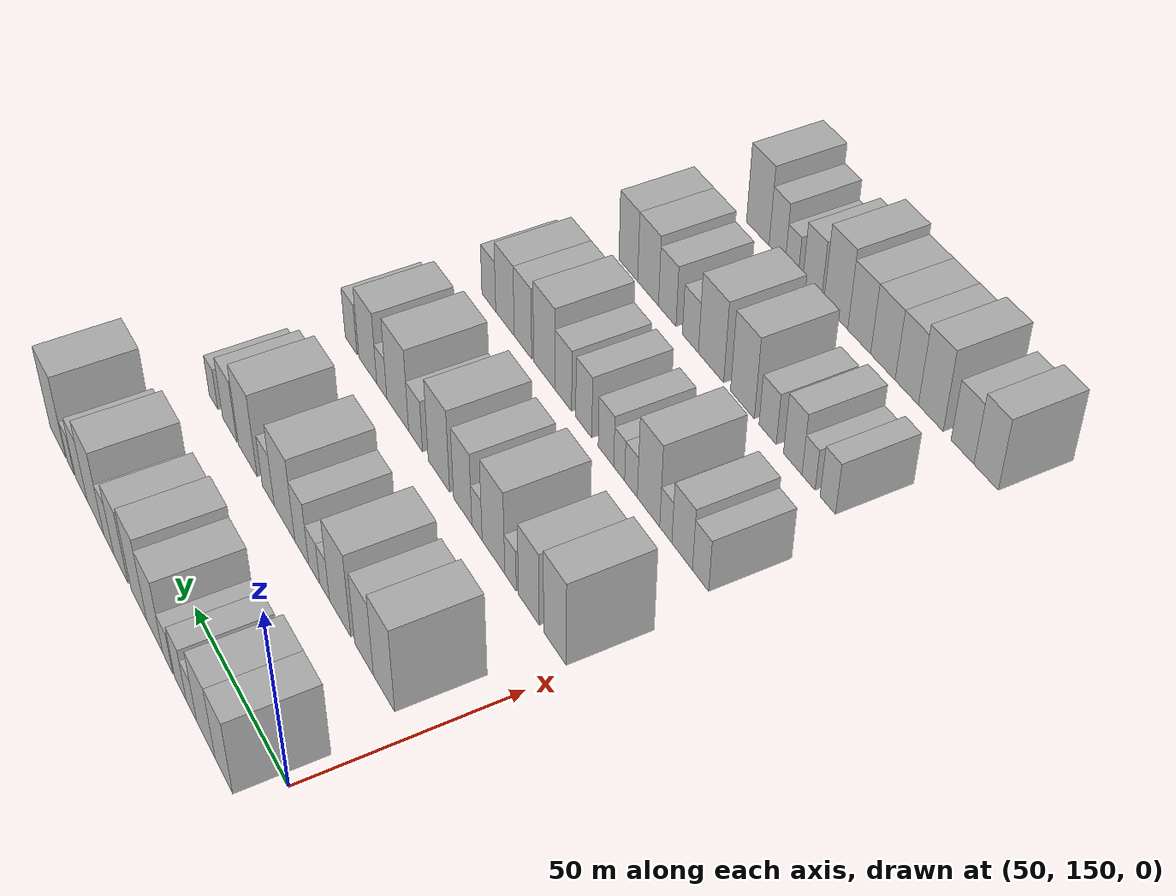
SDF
<sdf version="1.6">
 <world name="default">
  <model name="building_82">
   <static>1</static>
   <pose>50.0000 157.8252 0 0.000000 0.000000 0.000000</pose>
   <link name="link">
    <pose>0 0 10.50 0 0 0</pose>
    <collision name="collision"><geometry><box><size>20.0000 9.1745 21.0000</size></box></geometry></collision>
    <visual name="visual">
     <cast_shadows>0</cast_shadows>
     <geometry><box><size>20.0000 9.1745 21.0000</size></box></geometry>
     <material>
      <script>
       <uri>model://HANNAS_wall/materials/scripts</uri>
       <uri>model://HANNAS_wall/materials/textures</uri>
       <name>vrc/HANNAS_wall</name>
      </script>
     </material>
    </visual>
   </link>
  </model>
  <model name="building_83">
   <static>1</static>
   <pose>50.0000 167.4381 0 0.000000 0.000000 0.000000</pose>
   <link name="link">
    <pose>0 0 10.50 0 0 0</pose>
    <collision name="collision"><geometry><box><size>20.0000 10.0513 21.0000</size></box></geometry></collision>
    <visual name="visual">
     <cast_shadows>0</cast_shadows>
     <geometry><box><size>20.0000 10.0513 21.0000</size></box></geometry>
     <material>
      <script>
       <uri>model://HANNAS_wall/materials/scripts</uri>
       <uri>model://HANNAS_wall/materials/textures</uri>
       <name>vrc/HANNAS_wall</name>
      </script>
     </material>
    </visual>
   </link>
  </model>
  <model name="building_84">
   <static>1</static>
   <pose>50.0000 175.4180 0 0.000000 0.000000 0.000000</pose>
   <link name="link">
    <pose>0 0 6.00 0 0 0</pose>
    <collision name="collision"><geometry><box><size>20.0000 5.9084 12.0000</size></box></geometry></collision>
    <visual name="visual">
     <cast_shadows>0</cast_shadows>
     <geometry><box><size>20.0000 5.9084 12.0000</size></box></geometry>
     <material>
      <script>
       <uri>model://HANNAS_wall/materials/scripts</uri>
       <uri>model://HANNAS_wall/materials/textures</uri>
       <name>vrc/HANNAS_wall</name>
      </script>
     </material>
    </visual>
   </link>
  </model>
  <model name="building_85">
   <static>1</static>
   <pose>50.0000 181.6657 0 0.000000 0.000000 0.000000</pose>
   <link name="link">
    <pose>0 0 7.50 0 0 0</pose>
    <collision name="collision"><geometry><box><size>20.0000 6.5872 15.0000</size></box></geometry></collision>
    <visual name="visual">
     <cast_shadows>0</cast_shadows>
     <geometry><box><size>20.0000 6.5872 15.0000</size></box></geometry>
     <material>
      <script>
       <uri>model://HANNAS_wall/materials/scripts</uri>
       <uri>model://HANNAS_wall/materials/textures</uri>
       <name>vrc/HANNAS_wall</name>
      </script>
     </material>
    </visual>
   </link>
  </model>
  <model name="building_86">
   <static>1</static>
   <pose>50.0000 188.8149 0 0.000000 0.000000 0.000000</pose>
   <link name="link">
    <pose>0 0 6.00 0 0 0</pose>
    <collision name="collision"><geometry><box><size>20.0000 5.7112 12.0000</size></box></geometry></collision>
    <visual name="visual">
     <cast_shadows>0</cast_shadows>
     <geometry><box><size>20.0000 5.7112 12.0000</size></box></geometry>
     <material>
      <script>
       <uri>model://HANNAS_wall/materials/scripts</uri>
       <uri>model://HANNAS_wall/materials/textures</uri>
       <name>vrc/HANNAS_wall</name>
      </script>
     </material>
    </visual>
   </link>
  </model>
  <model name="building_87">
   <static>1</static>
   <pose>50.0000 196.4454 0 0.000000 0.000000 0.000000</pose>
   <link name="link">
    <pose>0 0 10.50 0 0 0</pose>
    <collision name="collision"><geometry><box><size>20.0000 9.5497 21.0000</size></box></geometry></collision>
    <visual name="visual">
     <cast_shadows>0</cast_shadows>
     <geometry><box><size>20.0000 9.5497 21.0000</size></box></geometry>
     <material>
      <script>
       <uri>model://HANNAS_wall/materials/scripts</uri>
       <uri>model://HANNAS_wall/materials/textures</uri>
       <name>vrc/HANNAS_wall</name>
      </script>
     </material>
    </visual>
   </link>
  </model>
  <model name="building_88">
   <static>1</static>
   <pose>50.0000 206.0378 0 0.000000 0.000000 0.000000</pose>
   <link name="link">
    <pose>0 0 12.00 0 0 0</pose>
    <collision name="collision"><geometry><box><size>20.0000 9.6351 24.0000</size></box></geometry></collision>
    <visual name="visual">
     <cast_shadows>0</cast_shadows>
     <geometry><box><size>20.0000 9.6351 24.0000</size></box></geometry>
     <material>
      <script>
       <uri>model://HANNAS_wall/materials/scripts</uri>
       <uri>model://HANNAS_wall/materials/textures</uri>
       <name>vrc/HANNAS_wall</name>
      </script>
     </material>
    </visual>
   </link>
  </model>
  <model name="building_89">
   <static>1</static>
   <pose>50.0000 217.3283 0 0.000000 0.000000 0.000000</pose>
   <link name="link">
    <pose>0 0 10.50 0 0 0</pose>
    <collision name="collision"><geometry><box><size>20.0000 8.9458 21.0000</size></box></geometry></collision>
    <visual name="visual">
     <cast_shadows>0</cast_shadows>
     <geometry><box><size>20.0000 8.9458 21.0000</size></box></geometry>
     <material>
      <script>
       <uri>model://HANNAS_wall/materials/scripts</uri>
       <uri>model://HANNAS_wall/materials/textures</uri>
       <name>vrc/HANNAS_wall</name>
      </script>
     </material>
    </visual>
   </link>
  </model>
  <model name="building_90">
   <static>1</static>
   <pose>50.0000 225.0494 0 0.000000 0.000000 0.000000</pose>
   <link name="link">
    <pose>0 0 7.50 0 0 0</pose>
    <collision name="collision"><geometry><box><size>20.0000 6.4965 15.0000</size></box></geometry></collision>
    <visual name="visual">
     <cast_shadows>0</cast_shadows>
     <geometry><box><size>20.0000 6.4965 15.0000</size></box></geometry>
     <material>
      <script>
       <uri>model://HANNAS_wall/materials/scripts</uri>
       <uri>model://HANNAS_wall/materials/textures</uri>
       <name>vrc/HANNAS_wall</name>
      </script>
     </material>
    </visual>
   </link>
  </model>
  <model name="building_91">
   <static>1</static>
   <pose>50.0000 233.7222 0 0.000000 0.000000 0.000000</pose>
   <link name="link">
    <pose>0 0 12.00 0 0 0</pose>
    <collision name="collision"><geometry><box><size>20.0000 10.8490 24.0000</size></box></geometry></collision>
    <visual name="visual">
     <cast_shadows>0</cast_shadows>
     <geometry><box><size>20.0000 10.8490 24.0000</size></box></geometry>
     <material>
      <script>
       <uri>model://HANNAS_wall/materials/scripts</uri>
       <uri>model://HANNAS_wall/materials/textures</uri>
       <name>vrc/HANNAS_wall</name>
      </script>
     </material>
    </visual>
   </link>
  </model>
  <model name="building_92">
   <static>1</static>
   <pose>50.0000 243.1330 0 0.000000 0.000000 0.000000</pose>
   <link name="link">
    <pose>0 0 9.00 0 0 0</pose>
    <collision name="collision"><geometry><box><size>20.0000 7.9726 18.0000</size></box></geometry></collision>
    <visual name="visual">
     <cast_shadows>0</cast_shadows>
     <geometry><box><size>20.0000 7.9726 18.0000</size></box></geometry>
     <material>
      <script>
       <uri>model://HANNAS_wall/materials/scripts</uri>
       <uri>model://HANNAS_wall/materials/textures</uri>
       <name>vrc/HANNAS_wall</name>
      </script>
     </material>
    </visual>
   </link>
  </model>
  <model name="building_93">
   <static>1</static>
   <pose>50.0000 250.5277 0 0.000000 0.000000 0.000000</pose>
   <link name="link">
    <pose>0 0 6.00 0 0 0</pose>
    <collision name="collision"><geometry><box><size>20.0000 4.8167 12.0000</size></box></geometry></collision>
    <visual name="visual">
     <cast_shadows>0</cast_shadows>
     <geometry><box><size>20.0000 4.8167 12.0000</size></box></geometry>
     <material>
      <script>
       <uri>model://HANNAS_wall/materials/scripts</uri>
       <uri>model://HANNAS_wall/materials/textures</uri>
       <name>vrc/HANNAS_wall</name>
      </script>
     </material>
    </visual>
   </link>
  </model>
  <model name="building_94">
   <static>1</static>
   <pose>50.0000 259.5753 0 0.000000 0.000000 0.000000</pose>
   <link name="link">
    <pose>0 0 12.00 0 0 0</pose>
    <collision name="collision"><geometry><box><size>20.0000 11.2786 24.0000</size></box></geometry></collision>
    <visual name="visual">
     <cast_shadows>0</cast_shadows>
     <geometry><box><size>20.0000 11.2786 24.0000</size></box></geometry>
     <material>
      <script>
       <uri>model://HANNAS_wall/materials/scripts</uri>
       <uri>model://HANNAS_wall/materials/textures</uri>
       <name>vrc/HANNAS_wall</name>
      </script>
     </material>
    </visual>
   </link>
  </model>
  <model name="building_213">
   <static>1</static>
   <pose>85.0000 162.1244 0 0.000000 0.000000 0.000000</pose>
   <link name="link">
    <pose>0 0 12.00 0 0 0</pose>
    <collision name="collision"><geometry><box><size>20.0000 10.1850 24.0000</size></box></geometry></collision>
    <visual name="visual">
     <cast_shadows>0</cast_shadows>
     <geometry><box><size>20.0000 10.1850 24.0000</size></box></geometry>
     <material>
      <script>
       <uri>model://HANNAS_wall/materials/scripts</uri>
       <uri>model://HANNAS_wall/materials/textures</uri>
       <name>vrc/HANNAS_wall</name>
      </script>
     </material>
    </visual>
   </link>
  </model>
  <model name="building_214">
   <static>1</static>
   <pose>85.0000 171.8482 0 0.000000 0.000000 0.000000</pose>
   <link name="link">
    <pose>0 0 10.50 0 0 0</pose>
    <collision name="collision"><geometry><box><size>20.0000 9.2625 21.0000</size></box></geometry></collision>
    <visual name="visual">
     <cast_shadows>0</cast_shadows>
     <geometry><box><size>20.0000 9.2625 21.0000</size></box></geometry>
     <material>
      <script>
       <uri>model://HANNAS_wall/materials/scripts</uri>
       <uri>model://HANNAS_wall/materials/textures</uri>
       <name>vrc/HANNAS_wall</name>
      </script>
     </material>
    </visual>
   </link>
  </model>
  <model name="building_215">
   <static>1</static>
   <pose>85.0000 183.9553 0 0.000000 0.000000 0.000000</pose>
   <link name="link">
    <pose>0 0 12.00 0 0 0</pose>
    <collision name="collision"><geometry><box><size>20.0000 10.9518 24.0000</size></box></geometry></collision>
    <visual name="visual">
     <cast_shadows>0</cast_shadows>
     <geometry><box><size>20.0000 10.9518 24.0000</size></box></geometry>
     <material>
      <script>
       <uri>model://HANNAS_wall/materials/scripts</uri>
       <uri>model://HANNAS_wall/materials/textures</uri>
       <name>vrc/HANNAS_wall</name>
      </script>
     </material>
    </visual>
   </link>
  </model>
  <model name="building_216">
   <static>1</static>
   <pose>85.0000 191.9980 0 0.000000 0.000000 0.000000</pose>
   <link name="link">
    <pose>0 0 6.00 0 0 0</pose>
    <collision name="collision"><geometry><box><size>20.0000 5.1335 12.0000</size></box></geometry></collision>
    <visual name="visual">
     <cast_shadows>0</cast_shadows>
     <geometry><box><size>20.0000 5.1335 12.0000</size></box></geometry>
     <material>
      <script>
       <uri>model://HANNAS_wall/materials/scripts</uri>
       <uri>model://HANNAS_wall/materials/textures</uri>
       <name>vrc/HANNAS_wall</name>
      </script>
     </material>
    </visual>
   </link>
  </model>
  <model name="building_217">
   <static>1</static>
   <pose>85.0000 197.4975 0 0.000000 0.000000 0.000000</pose>
   <link name="link">
    <pose>0 0 6.00 0 0 0</pose>
    <collision name="collision"><geometry><box><size>20.0000 5.8654 12.0000</size></box></geometry></collision>
    <visual name="visual">
     <cast_shadows>0</cast_shadows>
     <geometry><box><size>20.0000 5.8654 12.0000</size></box></geometry>
     <material>
      <script>
       <uri>model://HANNAS_wall/materials/scripts</uri>
       <uri>model://HANNAS_wall/materials/textures</uri>
       <name>vrc/HANNAS_wall</name>
      </script>
     </material>
    </visual>
   </link>
  </model>
  <model name="building_218">
   <static>1</static>
   <pose>85.0000 204.2107 0 0.000000 0.000000 0.000000</pose>
   <link name="link">
    <pose>0 0 9.00 0 0 0</pose>
    <collision name="collision"><geometry><box><size>20.0000 7.5610 18.0000</size></box></geometry></collision>
    <visual name="visual">
     <cast_shadows>0</cast_shadows>
     <geometry><box><size>20.0000 7.5610 18.0000</size></box></geometry>
     <material>
      <script>
       <uri>model://HANNAS_wall/materials/scripts</uri>
       <uri>model://HANNAS_wall/materials/textures</uri>
       <name>vrc/HANNAS_wall</name>
      </script>
     </material>
    </visual>
   </link>
  </model>
  <model name="building_219">
   <static>1</static>
   <pose>85.0000 213.7804 0 0.000000 0.000000 0.000000</pose>
   <link name="link">
    <pose>0 0 12.00 0 0 0</pose>
    <collision name="collision"><geometry><box><size>20.0000 11.5784 24.0000</size></box></geometry></collision>
    <visual name="visual">
     <cast_shadows>0</cast_shadows>
     <geometry><box><size>20.0000 11.5784 24.0000</size></box></geometry>
     <material>
      <script>
       <uri>model://HANNAS_wall/materials/scripts</uri>
       <uri>model://HANNAS_wall/materials/textures</uri>
       <name>vrc/HANNAS_wall</name>
      </script>
     </material>
    </visual>
   </link>
  </model>
  <model name="building_220">
   <static>1</static>
   <pose>85.0000 223.0181 0 0.000000 0.000000 0.000000</pose>
   <link name="link">
    <pose>0 0 7.50 0 0 0</pose>
    <collision name="collision"><geometry><box><size>20.0000 6.8969 15.0000</size></box></geometry></collision>
    <visual name="visual">
     <cast_shadows>0</cast_shadows>
     <geometry><box><size>20.0000 6.8969 15.0000</size></box></geometry>
     <material>
      <script>
       <uri>model://HANNAS_wall/materials/scripts</uri>
       <uri>model://HANNAS_wall/materials/textures</uri>
       <name>vrc/HANNAS_wall</name>
      </script>
     </material>
    </visual>
   </link>
  </model>
  <model name="building_221">
   <static>1</static>
   <pose>85.0000 234.9901 0 0.000000 0.000000 0.000000</pose>
   <link name="link">
    <pose>0 0 12.00 0 0 0</pose>
    <collision name="collision"><geometry><box><size>20.0000 11.0471 24.0000</size></box></geometry></collision>
    <visual name="visual">
     <cast_shadows>0</cast_shadows>
     <geometry><box><size>20.0000 11.0471 24.0000</size></box></geometry>
     <material>
      <script>
       <uri>model://HANNAS_wall/materials/scripts</uri>
       <uri>model://HANNAS_wall/materials/textures</uri>
       <name>vrc/HANNAS_wall</name>
      </script>
     </material>
    </visual>
   </link>
  </model>
  <model name="building_222">
   <static>1</static>
   <pose>85.0000 245.9176 0 0.000000 0.000000 0.000000</pose>
   <link name="link">
    <pose>0 0 9.00 0 0 0</pose>
    <collision name="collision"><geometry><box><size>20.0000 8.8079 18.0000</size></box></geometry></collision>
    <visual name="visual">
     <cast_shadows>0</cast_shadows>
     <geometry><box><size>20.0000 8.8079 18.0000</size></box></geometry>
     <material>
      <script>
       <uri>model://HANNAS_wall/materials/scripts</uri>
       <uri>model://HANNAS_wall/materials/textures</uri>
       <name>vrc/HANNAS_wall</name>
      </script>
     </material>
    </visual>
   </link>
  </model>
  <model name="building_223">
   <static>1</static>
   <pose>85.0000 256.0054 0 0.000000 0.000000 0.000000</pose>
   <link name="link">
    <pose>0 0 6.00 0 0 0</pose>
    <collision name="collision"><geometry><box><size>20.0000 5.3677 12.0000</size></box></geometry></collision>
    <visual name="visual">
     <cast_shadows>0</cast_shadows>
     <geometry><box><size>20.0000 5.3677 12.0000</size></box></geometry>
     <material>
      <script>
       <uri>model://HANNAS_wall/materials/scripts</uri>
       <uri>model://HANNAS_wall/materials/textures</uri>
       <name>vrc/HANNAS_wall</name>
      </script>
     </material>
    </visual>
   </link>
  </model>
  <model name="building_341">
   <static>1</static>
   <pose>120.0000 156.8927 0 0.000000 0.000000 0.000000</pose>
   <link name="link">
    <pose>0 0 12.00 0 0 0</pose>
    <collision name="collision"><geometry><box><size>20.0000 9.7804 24.0000</size></box></geometry></collision>
    <visual name="visual">
     <cast_shadows>0</cast_shadows>
     <geometry><box><size>20.0000 9.7804 24.0000</size></box></geometry>
     <material>
      <script>
       <uri>model://HANNAS_wall/materials/scripts</uri>
       <uri>model://HANNAS_wall/materials/textures</uri>
       <name>vrc/HANNAS_wall</name>
      </script>
     </material>
    </visual>
   </link>
  </model>
  <model name="building_342">
   <static>1</static>
   <pose>120.0000 168.4335 0 0.000000 0.000000 0.000000</pose>
   <link name="link">
    <pose>0 0 10.50 0 0 0</pose>
    <collision name="collision"><geometry><box><size>20.0000 9.3011 21.0000</size></box></geometry></collision>
    <visual name="visual">
     <cast_shadows>0</cast_shadows>
     <geometry><box><size>20.0000 9.3011 21.0000</size></box></geometry>
     <material>
      <script>
       <uri>model://HANNAS_wall/materials/scripts</uri>
       <uri>model://HANNAS_wall/materials/textures</uri>
       <name>vrc/HANNAS_wall</name>
      </script>
     </material>
    </visual>
   </link>
  </model>
  <model name="building_343">
   <static>1</static>
   <pose>120.0000 176.7363 0 0.000000 0.000000 0.000000</pose>
   <link name="link">
    <pose>0 0 6.00 0 0 0</pose>
    <collision name="collision"><geometry><box><size>20.0000 5.3045 12.0000</size></box></geometry></collision>
    <visual name="visual">
     <cast_shadows>0</cast_shadows>
     <geometry><box><size>20.0000 5.3045 12.0000</size></box></geometry>
     <material>
      <script>
       <uri>model://HANNAS_wall/materials/scripts</uri>
       <uri>model://HANNAS_wall/materials/textures</uri>
       <name>vrc/HANNAS_wall</name>
      </script>
     </material>
    </visual>
   </link>
  </model>
  <model name="building_344">
   <static>1</static>
   <pose>120.0000 184.7528 0 0.000000 0.000000 0.000000</pose>
   <link name="link">
    <pose>0 0 12.00 0 0 0</pose>
    <collision name="collision"><geometry><box><size>20.0000 10.7286 24.0000</size></box></geometry></collision>
    <visual name="visual">
     <cast_shadows>0</cast_shadows>
     <geometry><box><size>20.0000 10.7286 24.0000</size></box></geometry>
     <material>
      <script>
       <uri>model://HANNAS_wall/materials/scripts</uri>
       <uri>model://HANNAS_wall/materials/textures</uri>
       <name>vrc/HANNAS_wall</name>
      </script>
     </material>
    </visual>
   </link>
  </model>
  <model name="building_345">
   <static>1</static>
   <pose>120.0000 192.6079 0 0.000000 0.000000 0.000000</pose>
   <link name="link">
    <pose>0 0 6.00 0 0 0</pose>
    <collision name="collision"><geometry><box><size>20.0000 4.9816 12.0000</size></box></geometry></collision>
    <visual name="visual">
     <cast_shadows>0</cast_shadows>
     <geometry><box><size>20.0000 4.9816 12.0000</size></box></geometry>
     <material>
      <script>
       <uri>model://HANNAS_wall/materials/scripts</uri>
       <uri>model://HANNAS_wall/materials/textures</uri>
       <name>vrc/HANNAS_wall</name>
      </script>
     </material>
    </visual>
   </link>
  </model>
  <model name="building_346">
   <static>1</static>
   <pose>120.0000 199.5885 0 0.000000 0.000000 0.000000</pose>
   <link name="link">
    <pose>0 0 10.50 0 0 0</pose>
    <collision name="collision"><geometry><box><size>20.0000 8.9796 21.0000</size></box></geometry></collision>
    <visual name="visual">
     <cast_shadows>0</cast_shadows>
     <geometry><box><size>20.0000 8.9796 21.0000</size></box></geometry>
     <material>
      <script>
       <uri>model://HANNAS_wall/materials/scripts</uri>
       <uri>model://HANNAS_wall/materials/textures</uri>
       <name>vrc/HANNAS_wall</name>
      </script>
     </material>
    </visual>
   </link>
  </model>
  <model name="building_347">
   <static>1</static>
   <pose>120.0000 211.5350 0 0.000000 0.000000 0.000000</pose>
   <link name="link">
    <pose>0 0 12.00 0 0 0</pose>
    <collision name="collision"><geometry><box><size>20.0000 10.9134 24.0000</size></box></geometry></collision>
    <visual name="visual">
     <cast_shadows>0</cast_shadows>
     <geometry><box><size>20.0000 10.9134 24.0000</size></box></geometry>
     <material>
      <script>
       <uri>model://HANNAS_wall/materials/scripts</uri>
       <uri>model://HANNAS_wall/materials/textures</uri>
       <name>vrc/HANNAS_wall</name>
      </script>
     </material>
    </visual>
   </link>
  </model>
  <model name="building_348">
   <static>1</static>
   <pose>120.0000 223.6300 0 0.000000 0.000000 0.000000</pose>
   <link name="link">
    <pose>0 0 7.50 0 0 0</pose>
    <collision name="collision"><geometry><box><size>20.0000 7.2766 15.0000</size></box></geometry></collision>
    <visual name="visual">
     <cast_shadows>0</cast_shadows>
     <geometry><box><size>20.0000 7.2766 15.0000</size></box></geometry>
     <material>
      <script>
       <uri>model://HANNAS_wall/materials/scripts</uri>
       <uri>model://HANNAS_wall/materials/textures</uri>
       <name>vrc/HANNAS_wall</name>
      </script>
     </material>
    </visual>
   </link>
  </model>
  <model name="building_349">
   <static>1</static>
   <pose>120.0000 233.1793 0 0.000000 0.000000 0.000000</pose>
   <link name="link">
    <pose>0 0 12.00 0 0 0</pose>
    <collision name="collision"><geometry><box><size>20.0000 11.8220 24.0000</size></box></geometry></collision>
    <visual name="visual">
     <cast_shadows>0</cast_shadows>
     <geometry><box><size>20.0000 11.8220 24.0000</size></box></geometry>
     <material>
      <script>
       <uri>model://HANNAS_wall/materials/scripts</uri>
       <uri>model://HANNAS_wall/materials/textures</uri>
       <name>vrc/HANNAS_wall</name>
      </script>
     </material>
    </visual>
   </link>
  </model>
  <model name="building_350">
   <static>1</static>
   <pose>120.0000 241.8731 0 0.000000 0.000000 0.000000</pose>
   <link name="link">
    <pose>0 0 6.00 0 0 0</pose>
    <collision name="collision"><geometry><box><size>20.0000 5.5658 12.0000</size></box></geometry></collision>
    <visual name="visual">
     <cast_shadows>0</cast_shadows>
     <geometry><box><size>20.0000 5.5658 12.0000</size></box></geometry>
     <material>
      <script>
       <uri>model://HANNAS_wall/materials/scripts</uri>
       <uri>model://HANNAS_wall/materials/textures</uri>
       <name>vrc/HANNAS_wall</name>
      </script>
     </material>
    </visual>
   </link>
  </model>
  <model name="building_351">
   <static>1</static>
   <pose>120.0000 249.7493 0 0.000000 0.000000 0.000000</pose>
   <link name="link">
    <pose>0 0 10.50 0 0 0</pose>
    <collision name="collision"><geometry><box><size>20.0000 10.1866 21.0000</size></box></geometry></collision>
    <visual name="visual">
     <cast_shadows>0</cast_shadows>
     <geometry><box><size>20.0000 10.1866 21.0000</size></box></geometry>
     <material>
      <script>
       <uri>model://HANNAS_wall/materials/scripts</uri>
       <uri>model://HANNAS_wall/materials/textures</uri>
       <name>vrc/HANNAS_wall</name>
      </script>
     </material>
    </visual>
   </link>
  </model>
  <model name="building_352">
   <static>1</static>
   <pose>120.0000 259.2680 0 0.000000 0.000000 0.000000</pose>
   <link name="link">
    <pose>0 0 7.50 0 0 0</pose>
    <collision name="collision"><geometry><box><size>20.0000 6.8508 15.0000</size></box></geometry></collision>
    <visual name="visual">
     <cast_shadows>0</cast_shadows>
     <geometry><box><size>20.0000 6.8508 15.0000</size></box></geometry>
     <material>
      <script>
       <uri>model://HANNAS_wall/materials/scripts</uri>
       <uri>model://HANNAS_wall/materials/textures</uri>
       <name>vrc/HANNAS_wall</name>
      </script>
     </material>
    </visual>
   </link>
  </model>
  <model name="building_467">
   <static>1</static>
   <pose>155.0000 159.2019 0 0.000000 0.000000 0.000000</pose>
   <link name="link">
    <pose>0 0 7.50 0 0 0</pose>
    <collision name="collision"><geometry><box><size>20.0000 6.6357 15.0000</size></box></geometry></collision>
    <visual name="visual">
     <cast_shadows>0</cast_shadows>
     <geometry><box><size>20.0000 6.6357 15.0000</size></box></geometry>
     <material>
      <script>
       <uri>model://HANNAS_wall/materials/scripts</uri>
       <uri>model://HANNAS_wall/materials/textures</uri>
       <name>vrc/HANNAS_wall</name>
      </script>
     </material>
    </visual>
   </link>
  </model>
  <model name="building_468">
   <static>1</static>
   <pose>155.0000 166.8327 0 0.000000 0.000000 0.000000</pose>
   <link name="link">
    <pose>0 0 9.00 0 0 0</pose>
    <collision name="collision"><geometry><box><size>20.0000 8.6259 18.0000</size></box></geometry></collision>
    <visual name="visual">
     <cast_shadows>0</cast_shadows>
     <geometry><box><size>20.0000 8.6259 18.0000</size></box></geometry>
     <material>
      <script>
       <uri>model://HANNAS_wall/materials/scripts</uri>
       <uri>model://HANNAS_wall/materials/textures</uri>
       <name>vrc/HANNAS_wall</name>
      </script>
     </material>
    </visual>
   </link>
  </model>
  <model name="building_469">
   <static>1</static>
   <pose>155.0000 173.7328 0 0.000000 0.000000 0.000000</pose>
   <link name="link">
    <pose>0 0 6.00 0 0 0</pose>
    <collision name="collision"><geometry><box><size>20.0000 5.1743 12.0000</size></box></geometry></collision>
    <visual name="visual">
     <cast_shadows>0</cast_shadows>
     <geometry><box><size>20.0000 5.1743 12.0000</size></box></geometry>
     <material>
      <script>
       <uri>model://HANNAS_wall/materials/scripts</uri>
       <uri>model://HANNAS_wall/materials/textures</uri>
       <name>vrc/HANNAS_wall</name>
      </script>
     </material>
    </visual>
   </link>
  </model>
  <model name="building_470">
   <static>1</static>
   <pose>155.0000 181.1886 0 0.000000 0.000000 0.000000</pose>
   <link name="link">
    <pose>0 0 12.00 0 0 0</pose>
    <collision name="collision"><geometry><box><size>20.0000 9.7373 24.0000</size></box></geometry></collision>
    <visual name="visual">
     <cast_shadows>0</cast_shadows>
     <geometry><box><size>20.0000 9.7373 24.0000</size></box></geometry>
     <material>
      <script>
       <uri>model://HANNAS_wall/materials/scripts</uri>
       <uri>model://HANNAS_wall/materials/textures</uri>
       <name>vrc/HANNAS_wall</name>
      </script>
     </material>
    </visual>
   </link>
  </model>
  <model name="building_471">
   <static>1</static>
   <pose>155.0000 188.8866 0 0.000000 0.000000 0.000000</pose>
   <link name="link">
    <pose>0 0 6.00 0 0 0</pose>
    <collision name="collision"><geometry><box><size>20.0000 5.6587 12.0000</size></box></geometry></collision>
    <visual name="visual">
     <cast_shadows>0</cast_shadows>
     <geometry><box><size>20.0000 5.6587 12.0000</size></box></geometry>
     <material>
      <script>
       <uri>model://HANNAS_wall/materials/scripts</uri>
       <uri>model://HANNAS_wall/materials/textures</uri>
       <name>vrc/HANNAS_wall</name>
      </script>
     </material>
    </visual>
   </link>
  </model>
  <model name="building_472">
   <static>1</static>
   <pose>155.0000 194.1893 0 0.000000 0.000000 0.000000</pose>
   <link name="link">
    <pose>0 0 6.00 0 0 0</pose>
    <collision name="collision"><geometry><box><size>20.0000 4.9466 12.0000</size></box></geometry></collision>
    <visual name="visual">
     <cast_shadows>0</cast_shadows>
     <geometry><box><size>20.0000 4.9466 12.0000</size></box></geometry>
     <material>
      <script>
       <uri>model://HANNAS_wall/materials/scripts</uri>
       <uri>model://HANNAS_wall/materials/textures</uri>
       <name>vrc/HANNAS_wall</name>
      </script>
     </material>
    </visual>
   </link>
  </model>
  <model name="building_473">
   <static>1</static>
   <pose>155.0000 200.2275 0 0.000000 0.000000 0.000000</pose>
   <link name="link">
    <pose>0 0 7.50 0 0 0</pose>
    <collision name="collision"><geometry><box><size>20.0000 7.1298 15.0000</size></box></geometry></collision>
    <visual name="visual">
     <cast_shadows>0</cast_shadows>
     <geometry><box><size>20.0000 7.1298 15.0000</size></box></geometry>
     <material>
      <script>
       <uri>model://HANNAS_wall/materials/scripts</uri>
       <uri>model://HANNAS_wall/materials/textures</uri>
       <name>vrc/HANNAS_wall</name>
      </script>
     </material>
    </visual>
   </link>
  </model>
  <model name="building_474">
   <static>1</static>
   <pose>155.0000 210.5800 0 0.000000 0.000000 0.000000</pose>
   <link name="link">
    <pose>0 0 9.00 0 0 0</pose>
    <collision name="collision"><geometry><box><size>20.0000 7.5753 18.0000</size></box></geometry></collision>
    <visual name="visual">
     <cast_shadows>0</cast_shadows>
     <geometry><box><size>20.0000 7.5753 18.0000</size></box></geometry>
     <material>
      <script>
       <uri>model://HANNAS_wall/materials/scripts</uri>
       <uri>model://HANNAS_wall/materials/textures</uri>
       <name>vrc/HANNAS_wall</name>
      </script>
     </material>
    </visual>
   </link>
  </model>
  <model name="building_475">
   <static>1</static>
   <pose>155.0000 220.4308 0 0.000000 0.000000 0.000000</pose>
   <link name="link">
    <pose>0 0 9.00 0 0 0</pose>
    <collision name="collision"><geometry><box><size>20.0000 8.1262 18.0000</size></box></geometry></collision>
    <visual name="visual">
     <cast_shadows>0</cast_shadows>
     <geometry><box><size>20.0000 8.1262 18.0000</size></box></geometry>
     <material>
      <script>
       <uri>model://HANNAS_wall/materials/scripts</uri>
       <uri>model://HANNAS_wall/materials/textures</uri>
       <name>vrc/HANNAS_wall</name>
      </script>
     </material>
    </visual>
   </link>
  </model>
  <model name="building_476">
   <static>1</static>
   <pose>155.0000 229.7776 0 0.000000 0.000000 0.000000</pose>
   <link name="link">
    <pose>0 0 12.00 0 0 0</pose>
    <collision name="collision"><geometry><box><size>20.0000 10.5674 24.0000</size></box></geometry></collision>
    <visual name="visual">
     <cast_shadows>0</cast_shadows>
     <geometry><box><size>20.0000 10.5674 24.0000</size></box></geometry>
     <material>
      <script>
       <uri>model://HANNAS_wall/materials/scripts</uri>
       <uri>model://HANNAS_wall/materials/textures</uri>
       <name>vrc/HANNAS_wall</name>
      </script>
     </material>
    </visual>
   </link>
  </model>
  <model name="building_477">
   <static>1</static>
   <pose>155.0000 240.5363 0 0.000000 0.000000 0.000000</pose>
   <link name="link">
    <pose>0 0 10.50 0 0 0</pose>
    <collision name="collision"><geometry><box><size>20.0000 8.9502 21.0000</size></box></geometry></collision>
    <visual name="visual">
     <cast_shadows>0</cast_shadows>
     <geometry><box><size>20.0000 8.9502 21.0000</size></box></geometry>
     <material>
      <script>
       <uri>model://HANNAS_wall/materials/scripts</uri>
       <uri>model://HANNAS_wall/materials/textures</uri>
       <name>vrc/HANNAS_wall</name>
      </script>
     </material>
    </visual>
   </link>
  </model>
  <model name="building_478">
   <static>1</static>
   <pose>155.0000 249.8754 0 0.000000 0.000000 0.000000</pose>
   <link name="link">
    <pose>0 0 10.50 0 0 0</pose>
    <collision name="collision"><geometry><box><size>20.0000 9.7280 21.0000</size></box></geometry></collision>
    <visual name="visual">
     <cast_shadows>0</cast_shadows>
     <geometry><box><size>20.0000 9.7280 21.0000</size></box></geometry>
     <material>
      <script>
       <uri>model://HANNAS_wall/materials/scripts</uri>
       <uri>model://HANNAS_wall/materials/textures</uri>
       <name>vrc/HANNAS_wall</name>
      </script>
     </material>
    </visual>
   </link>
  </model>
  <model name="building_479">
   <static>1</static>
   <pose>155.0000 258.4490 0 0.000000 0.000000 0.000000</pose>
   <link name="link">
    <pose>0 0 7.50 0 0 0</pose>
    <collision name="collision"><geometry><box><size>20.0000 7.4192 15.0000</size></box></geometry></collision>
    <visual name="visual">
     <cast_shadows>0</cast_shadows>
     <geometry><box><size>20.0000 7.4192 15.0000</size></box></geometry>
     <material>
      <script>
       <uri>model://HANNAS_wall/materials/scripts</uri>
       <uri>model://HANNAS_wall/materials/textures</uri>
       <name>vrc/HANNAS_wall</name>
      </script>
     </material>
    </visual>
   </link>
  </model>
  <model name="building_598">
   <static>1</static>
   <pose>190.0000 165.3549 0 0.000000 0.000000 0.000000</pose>
   <link name="link">
    <pose>0 0 7.50 0 0 0</pose>
    <collision name="collision"><geometry><box><size>20.0000 6.0493 15.0000</size></box></geometry></collision>
    <visual name="visual">
     <cast_shadows>0</cast_shadows>
     <geometry><box><size>20.0000 6.0493 15.0000</size></box></geometry>
     <material>
      <script>
       <uri>model://HANNAS_wall/materials/scripts</uri>
       <uri>model://HANNAS_wall/materials/textures</uri>
       <name>vrc/HANNAS_wall</name>
      </script>
     </material>
    </visual>
   </link>
  </model>
  <model name="building_599">
   <static>1</static>
   <pose>190.0000 173.0183 0 0.000000 0.000000 0.000000</pose>
   <link name="link">
    <pose>0 0 6.00 0 0 0</pose>
    <collision name="collision"><geometry><box><size>20.0000 5.2775 12.0000</size></box></geometry></collision>
    <visual name="visual">
     <cast_shadows>0</cast_shadows>
     <geometry><box><size>20.0000 5.2775 12.0000</size></box></geometry>
     <material>
      <script>
       <uri>model://HANNAS_wall/materials/scripts</uri>
       <uri>model://HANNAS_wall/materials/textures</uri>
       <name>vrc/HANNAS_wall</name>
      </script>
     </material>
    </visual>
   </link>
  </model>
  <model name="building_600">
   <static>1</static>
   <pose>190.0000 179.4320 0 0.000000 0.000000 0.000000</pose>
   <link name="link">
    <pose>0 0 9.00 0 0 0</pose>
    <collision name="collision"><geometry><box><size>20.0000 7.5499 18.0000</size></box></geometry></collision>
    <visual name="visual">
     <cast_shadows>0</cast_shadows>
     <geometry><box><size>20.0000 7.5499 18.0000</size></box></geometry>
     <material>
      <script>
       <uri>model://HANNAS_wall/materials/scripts</uri>
       <uri>model://HANNAS_wall/materials/textures</uri>
       <name>vrc/HANNAS_wall</name>
      </script>
     </material>
    </visual>
   </link>
  </model>
  <model name="building_601">
   <static>1</static>
   <pose>190.0000 189.8434 0 0.000000 0.000000 0.000000</pose>
   <link name="link">
    <pose>0 0 7.50 0 0 0</pose>
    <collision name="collision"><geometry><box><size>20.0000 7.2728 15.0000</size></box></geometry></collision>
    <visual name="visual">
     <cast_shadows>0</cast_shadows>
     <geometry><box><size>20.0000 7.2728 15.0000</size></box></geometry>
     <material>
      <script>
       <uri>model://HANNAS_wall/materials/scripts</uri>
       <uri>model://HANNAS_wall/materials/textures</uri>
       <name>vrc/HANNAS_wall</name>
      </script>
     </material>
    </visual>
   </link>
  </model>
  <model name="building_602">
   <static>1</static>
   <pose>190.0000 200.6493 0 0.000000 0.000000 0.000000</pose>
   <link name="link">
    <pose>0 0 12.00 0 0 0</pose>
    <collision name="collision"><geometry><box><size>20.0000 10.3391 24.0000</size></box></geometry></collision>
    <visual name="visual">
     <cast_shadows>0</cast_shadows>
     <geometry><box><size>20.0000 10.3391 24.0000</size></box></geometry>
     <material>
      <script>
       <uri>model://HANNAS_wall/materials/scripts</uri>
       <uri>model://HANNAS_wall/materials/textures</uri>
       <name>vrc/HANNAS_wall</name>
      </script>
     </material>
    </visual>
   </link>
  </model>
  <model name="building_603">
   <static>1</static>
   <pose>190.0000 214.5289 0 0.000000 0.000000 0.000000</pose>
   <link name="link">
    <pose>0 0 12.00 0 0 0</pose>
    <collision name="collision"><geometry><box><size>20.0000 11.4199 24.0000</size></box></geometry></collision>
    <visual name="visual">
     <cast_shadows>0</cast_shadows>
     <geometry><box><size>20.0000 11.4199 24.0000</size></box></geometry>
     <material>
      <script>
       <uri>model://HANNAS_wall/materials/scripts</uri>
       <uri>model://HANNAS_wall/materials/textures</uri>
       <name>vrc/HANNAS_wall</name>
      </script>
     </material>
    </visual>
   </link>
  </model>
  <model name="building_604">
   <static>1</static>
   <pose>190.0000 223.9229 0 0.000000 0.000000 0.000000</pose>
   <link name="link">
    <pose>0 0 7.50 0 0 0</pose>
    <collision name="collision"><geometry><box><size>20.0000 7.3682 15.0000</size></box></geometry></collision>
    <visual name="visual">
     <cast_shadows>0</cast_shadows>
     <geometry><box><size>20.0000 7.3682 15.0000</size></box></geometry>
     <material>
      <script>
       <uri>model://HANNAS_wall/materials/scripts</uri>
       <uri>model://HANNAS_wall/materials/textures</uri>
       <name>vrc/HANNAS_wall</name>
      </script>
     </material>
    </visual>
   </link>
  </model>
  <model name="building_605">
   <static>1</static>
   <pose>190.0000 234.7741 0 0.000000 0.000000 0.000000</pose>
   <link name="link">
    <pose>0 0 9.00 0 0 0</pose>
    <collision name="collision"><geometry><box><size>20.0000 8.3342 18.0000</size></box></geometry></collision>
    <visual name="visual">
     <cast_shadows>0</cast_shadows>
     <geometry><box><size>20.0000 8.3342 18.0000</size></box></geometry>
     <material>
      <script>
       <uri>model://HANNAS_wall/materials/scripts</uri>
       <uri>model://HANNAS_wall/materials/textures</uri>
       <name>vrc/HANNAS_wall</name>
      </script>
     </material>
    </visual>
   </link>
  </model>
  <model name="building_606">
   <static>1</static>
   <pose>190.0000 244.0047 0 0.000000 0.000000 0.000000</pose>
   <link name="link">
    <pose>0 0 10.50 0 0 0</pose>
    <collision name="collision"><geometry><box><size>20.0000 10.1271 21.0000</size></box></geometry></collision>
    <visual name="visual">
     <cast_shadows>0</cast_shadows>
     <geometry><box><size>20.0000 10.1271 21.0000</size></box></geometry>
     <material>
      <script>
       <uri>model://HANNAS_wall/materials/scripts</uri>
       <uri>model://HANNAS_wall/materials/textures</uri>
       <name>vrc/HANNAS_wall</name>
      </script>
     </material>
    </visual>
   </link>
  </model>
  <model name="building_607">
   <static>1</static>
   <pose>190.0000 253.7245 0 0.000000 0.000000 0.000000</pose>
   <link name="link">
    <pose>0 0 10.50 0 0 0</pose>
    <collision name="collision"><geometry><box><size>20.0000 9.3125 21.0000</size></box></geometry></collision>
    <visual name="visual">
     <cast_shadows>0</cast_shadows>
     <geometry><box><size>20.0000 9.3125 21.0000</size></box></geometry>
     <material>
      <script>
       <uri>model://HANNAS_wall/materials/scripts</uri>
       <uri>model://HANNAS_wall/materials/textures</uri>
       <name>vrc/HANNAS_wall</name>
      </script>
     </material>
    </visual>
   </link>
  </model>
  <model name="building_723">
   <static>1</static>
   <pose>225.0000 156.6791 0 0.000000 0.000000 0.000000</pose>
   <link name="link">
    <pose>0 0 10.50 0 0 0</pose>
    <collision name="collision"><geometry><box><size>20.0000 8.9220 21.0000</size></box></geometry></collision>
    <visual name="visual">
     <cast_shadows>0</cast_shadows>
     <geometry><box><size>20.0000 8.9220 21.0000</size></box></geometry>
     <material>
      <script>
       <uri>model://HANNAS_wall/materials/scripts</uri>
       <uri>model://HANNAS_wall/materials/textures</uri>
       <name>vrc/HANNAS_wall</name>
      </script>
     </material>
    </visual>
   </link>
  </model>
  <model name="building_724">
   <static>1</static>
   <pose>225.0000 165.4256 0 0.000000 0.000000 0.000000</pose>
   <link name="link">
    <pose>0 0 9.00 0 0 0</pose>
    <collision name="collision"><geometry><box><size>20.0000 8.5708 18.0000</size></box></geometry></collision>
    <visual name="visual">
     <cast_shadows>0</cast_shadows>
     <geometry><box><size>20.0000 8.5708 18.0000</size></box></geometry>
     <material>
      <script>
       <uri>model://HANNAS_wall/materials/scripts</uri>
       <uri>model://HANNAS_wall/materials/textures</uri>
       <name>vrc/HANNAS_wall</name>
      </script>
     </material>
    </visual>
   </link>
  </model>
  <model name="building_725">
   <static>1</static>
   <pose>225.0000 177.5370 0 0.000000 0.000000 0.000000</pose>
   <link name="link">
    <pose>0 0 12.00 0 0 0</pose>
    <collision name="collision"><geometry><box><size>20.0000 9.6520 24.0000</size></box></geometry></collision>
    <visual name="visual">
     <cast_shadows>0</cast_shadows>
     <geometry><box><size>20.0000 9.6520 24.0000</size></box></geometry>
     <material>
      <script>
       <uri>model://HANNAS_wall/materials/scripts</uri>
       <uri>model://HANNAS_wall/materials/textures</uri>
       <name>vrc/HANNAS_wall</name>
      </script>
     </material>
    </visual>
   </link>
  </model>
  <model name="building_726">
   <static>1</static>
   <pose>225.0000 186.9914 0 0.000000 0.000000 0.000000</pose>
   <link name="link">
    <pose>0 0 10.50 0 0 0</pose>
    <collision name="collision"><geometry><box><size>20.0000 9.2570 21.0000</size></box></geometry></collision>
    <visual name="visual">
     <cast_shadows>0</cast_shadows>
     <geometry><box><size>20.0000 9.2570 21.0000</size></box></geometry>
     <material>
      <script>
       <uri>model://HANNAS_wall/materials/scripts</uri>
       <uri>model://HANNAS_wall/materials/textures</uri>
       <name>vrc/HANNAS_wall</name>
      </script>
     </material>
    </visual>
   </link>
  </model>
  <model name="building_727">
   <static>1</static>
   <pose>225.0000 196.6239 0 0.000000 0.000000 0.000000</pose>
   <link name="link">
    <pose>0 0 10.50 0 0 0</pose>
    <collision name="collision"><geometry><box><size>20.0000 10.0079 21.0000</size></box></geometry></collision>
    <visual name="visual">
     <cast_shadows>0</cast_shadows>
     <geometry><box><size>20.0000 10.0079 21.0000</size></box></geometry>
     <material>
      <script>
       <uri>model://HANNAS_wall/materials/scripts</uri>
       <uri>model://HANNAS_wall/materials/textures</uri>
       <name>vrc/HANNAS_wall</name>
      </script>
     </material>
    </visual>
   </link>
  </model>
  <model name="building_728">
   <static>1</static>
   <pose>225.0000 206.4325 0 0.000000 0.000000 0.000000</pose>
   <link name="link">
    <pose>0 0 10.50 0 0 0</pose>
    <collision name="collision"><geometry><box><size>20.0000 9.6093 21.0000</size></box></geometry></collision>
    <visual name="visual">
     <cast_shadows>0</cast_shadows>
     <geometry><box><size>20.0000 9.6093 21.0000</size></box></geometry>
     <material>
      <script>
       <uri>model://HANNAS_wall/materials/scripts</uri>
       <uri>model://HANNAS_wall/materials/textures</uri>
       <name>vrc/HANNAS_wall</name>
      </script>
     </material>
    </visual>
   </link>
  </model>
  <model name="building_729">
   <static>1</static>
   <pose>225.0000 216.4183 0 0.000000 0.000000 0.000000</pose>
   <link name="link">
    <pose>0 0 12.00 0 0 0</pose>
    <collision name="collision"><geometry><box><size>20.0000 10.3624 24.0000</size></box></geometry></collision>
    <visual name="visual">
     <cast_shadows>0</cast_shadows>
     <geometry><box><size>20.0000 10.3624 24.0000</size></box></geometry>
     <material>
      <script>
       <uri>model://HANNAS_wall/materials/scripts</uri>
       <uri>model://HANNAS_wall/materials/textures</uri>
       <name>vrc/HANNAS_wall</name>
      </script>
     </material>
    </visual>
   </link>
  </model>
  <model name="building_730">
   <static>1</static>
   <pose>225.0000 226.7304 0 0.000000 0.000000 0.000000</pose>
   <link name="link">
    <pose>0 0 9.00 0 0 0</pose>
    <collision name="collision"><geometry><box><size>20.0000 8.2618 18.0000</size></box></geometry></collision>
    <visual name="visual">
     <cast_shadows>0</cast_shadows>
     <geometry><box><size>20.0000 8.2618 18.0000</size></box></geometry>
     <material>
      <script>
       <uri>model://HANNAS_wall/materials/scripts</uri>
       <uri>model://HANNAS_wall/materials/textures</uri>
       <name>vrc/HANNAS_wall</name>
      </script>
     </material>
    </visual>
   </link>
  </model>
  <model name="building_731">
   <static>1</static>
   <pose>225.0000 235.7850 0 0.000000 0.000000 0.000000</pose>
   <link name="link">
    <pose>0 0 6.00 0 0 0</pose>
    <collision name="collision"><geometry><box><size>20.0000 5.8474 12.0000</size></box></geometry></collision>
    <visual name="visual">
     <cast_shadows>0</cast_shadows>
     <geometry><box><size>20.0000 5.8474 12.0000</size></box></geometry>
     <material>
      <script>
       <uri>model://HANNAS_wall/materials/scripts</uri>
       <uri>model://HANNAS_wall/materials/textures</uri>
       <name>vrc/HANNAS_wall</name>
      </script>
     </material>
    </visual>
   </link>
  </model>
  <model name="building_732">
   <static>1</static>
   <pose>225.0000 242.4352 0 0.000000 0.000000 0.000000</pose>
   <link name="link">
    <pose>0 0 9.00 0 0 0</pose>
    <collision name="collision"><geometry><box><size>20.0000 7.4530 18.0000</size></box></geometry></collision>
    <visual name="visual">
     <cast_shadows>0</cast_shadows>
     <geometry><box><size>20.0000 7.4530 18.0000</size></box></geometry>
     <material>
      <script>
       <uri>model://HANNAS_wall/materials/scripts</uri>
       <uri>model://HANNAS_wall/materials/textures</uri>
       <name>vrc/HANNAS_wall</name>
      </script>
     </material>
    </visual>
   </link>
  </model>
  <model name="building_733">
   <static>1</static>
   <pose>225.0000 251.4420 0 0.000000 0.000000 0.000000</pose>
   <link name="link">
    <pose>0 0 12.00 0 0 0</pose>
    <collision name="collision"><geometry><box><size>20.0000 10.5607 24.0000</size></box></geometry></collision>
    <visual name="visual">
     <cast_shadows>0</cast_shadows>
     <geometry><box><size>20.0000 10.5607 24.0000</size></box></geometry>
     <material>
      <script>
       <uri>model://HANNAS_wall/materials/scripts</uri>
       <uri>model://HANNAS_wall/materials/textures</uri>
       <name>vrc/HANNAS_wall</name>
      </script>
     </material>
    </visual>
   </link>
  </model>
 </world>
</sdf>
